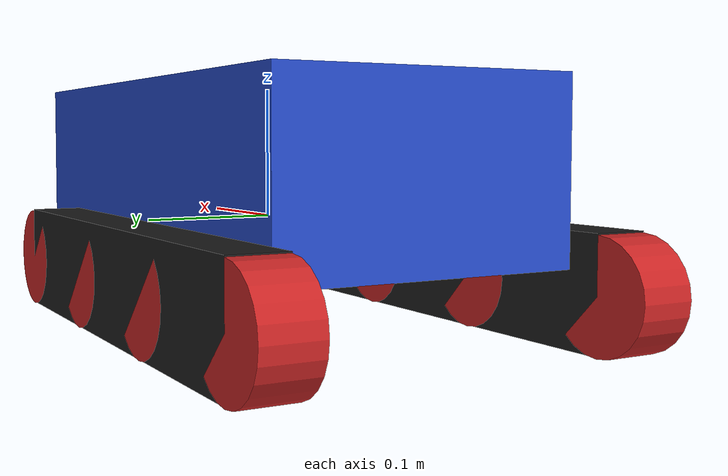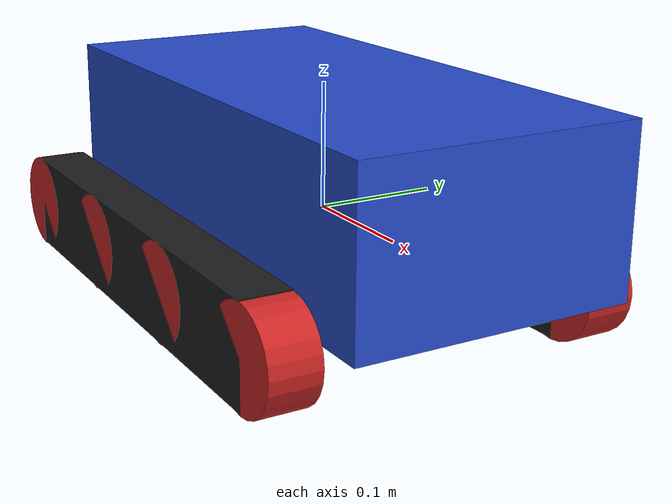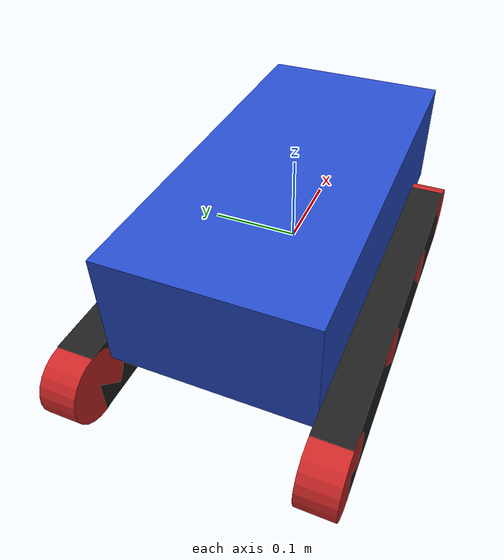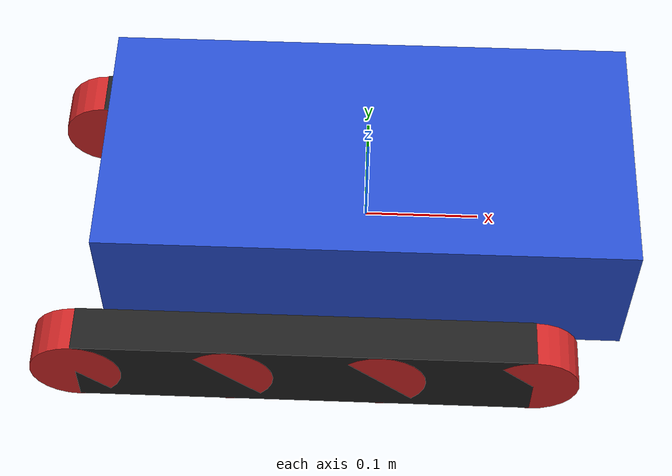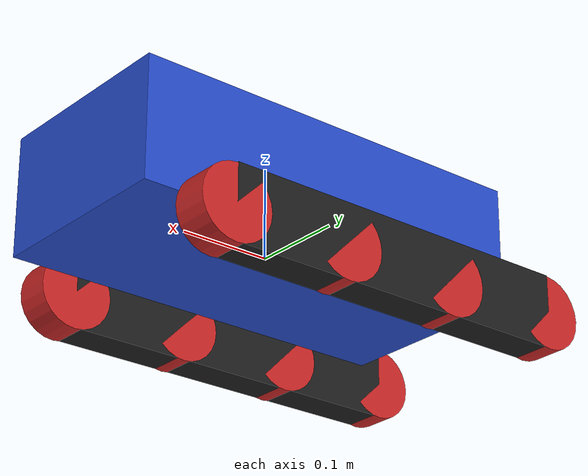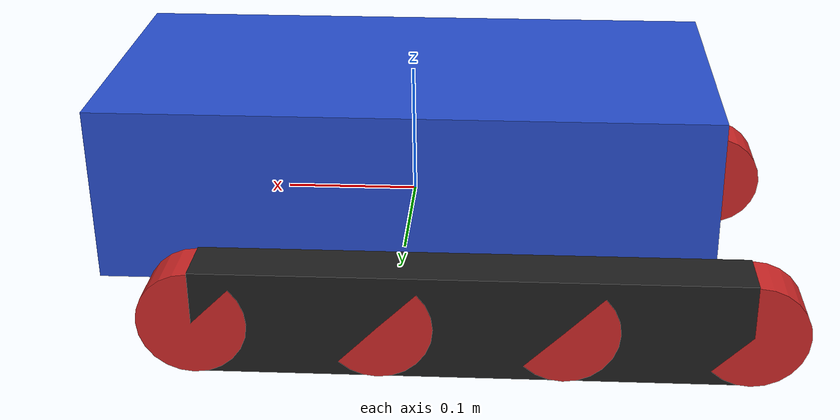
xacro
<?xml version="1.0" ?>

<robot name="eSAUl" xmlns:xacro="http://www.ros.org/wiki/xacro">

  <xacro:property name="chassis_mass" value="1" />
  <xacro:property name="chassis_length" value="0.45" />
  <xacro:property name="chassis_width" value="0.22" />
  <xacro:property name="chassis_height" value="0.13" />

  <xacro:property name="track_mass" value="0.1" />
  <xacro:property name="track_rad" value="0.04" />
  <xacro:property name="track_length" value="0.04" />

  <xacro:property name="box_length" value="0.4" />
  <xacro:property name="box_width" value="0.04" />
  <xacro:property name="box_height" value="0.08" />
   <xacro:property name="wheel_mass" value="0.2" />

  <xacro:property name="wheel_friction" value="1.75" />

  <!-- INERTIAL MACROS -->
  <xacro:macro name="null_inertial">
    <inertial>
      <mass value="0.001"/>
      <inertia ixx="0.001" ixy="0" ixz="0"
               iyy="0.001" iyz="0"
               izz="0.001"/>
      </inertial>
  </xacro:macro>

  <xacro:macro name="solid_cuboid_inertial"
               params="width length height mass *origin">
    <inertial>
      <xacro:insert_block name="origin"/>
      <mass value="${mass}"/>
      <inertia ixx="${mass * (width * width + height * height) / 12}"
               ixy="0" ixz="0"
               iyy="${mass * (length * length + height * height) / 12}"
               iyz="0"
               izz="${mass * (width * width + length * length) / 12}"/>
    </inertial>
  </xacro:macro>

  <xacro:macro name="solid_cylinder_inertial"
               params="r h mass *origin">
    <inertial>
      <xacro:insert_block name="origin"/>
      <mass value="${mass}"/>
      <inertia ixx="${mass / 12 * (3 * r * r + h * h)}" ixy="0.0" ixz="0.0"
               iyy="${mass / 12 * (3 * r * r + h * h)}" iyz="0.0"
               izz="${mass / 2 * r * r}" />
    </inertial>
  </xacro:macro>

  <!-- INERTIAL MACROS END -->

  <link name="link_chassis">
    <collision name="collision_chassis">
      <geometry>
        <box size="${chassis_length} ${chassis_width} ${chassis_height}"/>
      </geometry>
    </collision>
    <visual>
      <origin rpy="0 0 0" xyz="0 0 ${track_rad}"/>
      <geometry>
        <box size="${chassis_length} ${chassis_width} ${chassis_height}"/>
      </geometry>
      <material name="blue"/>
    </visual>
    <xacro:solid_cuboid_inertial
          length="${chassis_length}" width="${chassis_width}"
          height="${chassis_height}" mass="${chassis_mass}">
      <origin xyz="0 0 0" rpy="0 0 0" />
    </xacro:solid_cuboid_inertial>
  </link>

  <xacro:macro name="link_track" params="name">
    <link name="${name}">
      <collision name="collision_left_track">
        <geometry>
          <box size="${box_length} ${box_width} ${box_height}"/>
        </geometry>
      </collision>
      <visual>
        <origin rpy="0 0 0" xyz="0 0 0.001"/>
        <geometry>
          <box size="${box_length} ${box_width} ${box_height}"/>
        </geometry>
        <material name="black"/>
      </visual>
      <xacro:solid_cuboid_inertial
            length="${box_length}" width="${box_width}"
            height="${box_height}" mass="${track_mass}">
        <origin xyz="0 0 0" rpy="0 0 0" />
      </xacro:solid_cuboid_inertial>
    </link>
    <gazebo reference="${name}">
      <mu1>1</mu1>
      <mu2>1</mu2>
      <material>Gazebo/Black</material>
    </gazebo>
  </xacro:macro>

  <xacro:macro name="link_wheel" params="name">
    <link name="${name}">
      <xacro:solid_cylinder_inertial
          r="${track_rad}" h="${track_length}"
          mass="${wheel_mass}" >
        <origin xyz="0 0 0" rpy="0 0 0" />
      </xacro:solid_cylinder_inertial>
      <collision name="link_right_wheel_collision">
        <origin rpy="0 1.5707 1.5707" xyz="0 0 0"/>
        <geometry>
          <cylinder length="${track_length}" radius="${track_rad}"/>
        </geometry>
      </collision>
      <visual name="${name}_visual">
        <origin rpy="0 1.5707 1.5707" xyz="0 0 0"/>
        <geometry>
          <cylinder length="${track_length}" radius="${track_rad}"/>
        </geometry>
      </visual>
    </link>
    <gazebo reference="${name}">
      <mu1>2</mu1>
      <mu2>1.5</mu2>
      <material>Gazebo/Red</material>
    </gazebo>
  </xacro:macro>

  <xacro:macro name="joint_wheel_right" params="name child origin_xyz">
    <joint name="${name}" type="continuous">
      <origin rpy="0 0 0" xyz="${origin_xyz}"/>
      <child link="${child}"/>
      <parent link="link_right"/>
      <axis rpy="0 0 0" xyz="0 1 0"/>
      <limit effort="10000" velocity="1000"/>
      <joint_properties damping="1.0" friction="1.0"/>
    </joint>
  </xacro:macro>

    <xacro:macro name="joint_wheel_left" params="name child origin_xyz">
    <joint name="${name}" type="continuous">
      <origin rpy="0 0 0" xyz="${origin_xyz}"/>
      <child link="${child}"/>
      <parent link="link_left"/>
      <axis rpy="0 0 0" xyz="0 1 0"/>
      <limit effort="10000" velocity="1000"/>
      <joint_properties damping="1.0" friction="1.0"/>
    </joint>
  </xacro:macro>

  <xacro:macro name="joint_track" params="name child origin_xyz">
    <joint name="${name}" type="fixed">
      <origin rpy="0 0 0" xyz="${origin_xyz}"/>
      <child link="${child}"/>
      <parent link="link_chassis"/>
      <axis rpy="0 0 0" xyz="0 1 0"/>
      <joint_properties damping="1.0" friction="0.0"/>
    </joint>
  </xacro:macro>

  <xacro:link_track name="link_right" />
	<xacro:joint_track name="joint_right" child="link_right" origin_xyz="-0.05 ${-chassis_width/2-box_width/2} ${-track_rad}" />

  <xacro:link_wheel name="right_wheel_1" />
	<xacro:joint_wheel_right name="joint_right_wheel_1" child="right_wheel_1" origin_xyz="${box_length/2} 0 0" />

  <xacro:link_wheel name="right_wheel_2" />
	<xacro:joint_wheel_right name="joint_right_wheel_2" child="right_wheel_2" origin_xyz="${box_length/6} 0 0" />

  <xacro:link_wheel name="right_wheel_3" />
	<xacro:joint_wheel_right name="joint_right_wheel_3" child="right_wheel_3" origin_xyz="${-box_length/6} 0 0" />

  <xacro:link_wheel name="right_wheel_4" />
	<xacro:joint_wheel_right name="joint_right_wheel_4" child="right_wheel_4" origin_xyz="${-box_length/2} 0 0" />

  <xacro:link_track name="link_left" />
	<xacro:joint_track name="joint_left" child="link_left" origin_xyz="-0.05 ${chassis_width/2+box_width/2} ${-track_rad}" />

  <xacro:link_wheel name="left_wheel_1" />
	<xacro:joint_wheel_left name="joint_left_wheel_1" child="left_wheel_1" origin_xyz="${box_length/2} 0 0" />

  <xacro:link_wheel name="left_wheel_2" />
	<xacro:joint_wheel_left name="joint_left_wheel_2" child="left_wheel_2" origin_xyz="${box_length/6} 0 0" />

  <xacro:link_wheel name="left_wheel_3" />
	<xacro:joint_wheel_left name="joint_left_wheel_3" child="left_wheel_3" origin_xyz="${-box_length/6} 0 0" />

  <xacro:link_wheel name="left_wheel_4" />
	<xacro:joint_wheel_left name="joint_left_wheel_4" child="left_wheel_4" origin_xyz="${-box_length/2} 0 0" />

  	<gazebo>
    		<plugin name="ModelPlugin" filename="libesaul_description.so" >
      			<robotName>eSAUl</robotName>
            <joint_left1>joint_left_wheel_1</joint_left1>
            <joint_right1>joint_right_wheel_1</joint_right1>
            <joint_left2>joint_left_wheel_2</joint_left2>
            <joint_right2>joint_right_wheel_2</joint_right2>
            <joint_left3>joint_left_wheel_3</joint_left3>
            <joint_right3>joint_right_wheel_3</joint_right3>
            <joint_left4>joint_left_wheel_4</joint_left4>
            <joint_right4>joint_right_wheel_4</joint_right4>
            <link_r>link_right</link_r>
            <link_l>link_left</link_l>
   		 </plugin>
	</gazebo>

 </robot>
